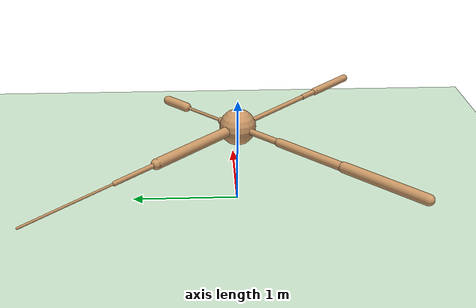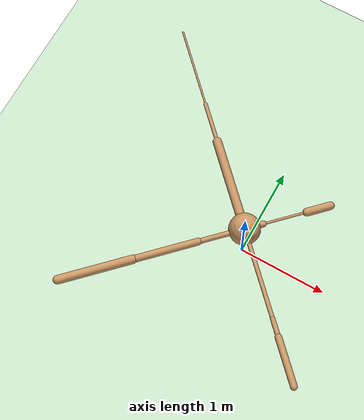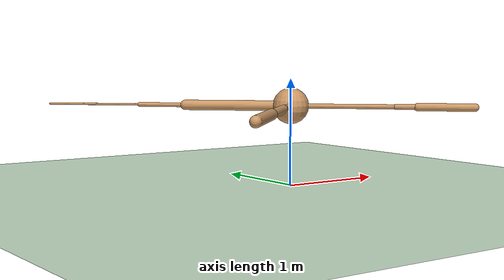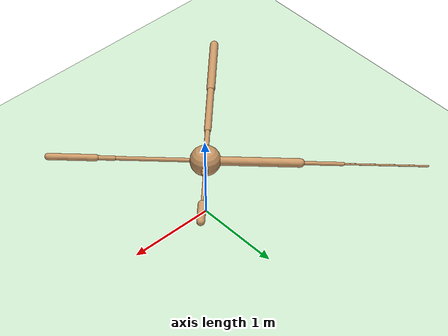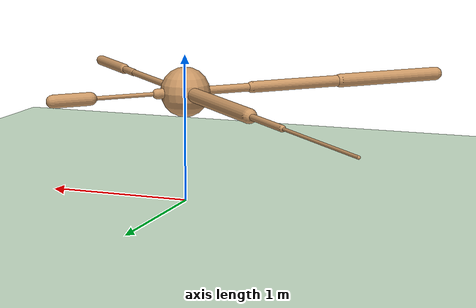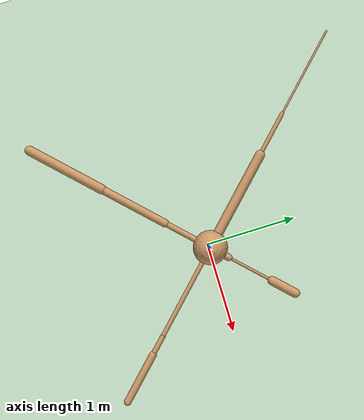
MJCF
<mujoco model="ant">
  <compiler angle="degree" coordinate="local" inertiafromgeom="true" />
  <option integrator="RK4" timestep="0.01" />
  <custom>
    <numeric data="0.0 0.0 0.55 1.0 0.0 0.0 0.0 0.0 1.0 0.0 -1.0 0.0 -1.0 0.0 1.0" name="init_qpos" />
  </custom>
  <default>
    <joint armature="1" damping="1" limited="true" />
    <geom conaffinity="0" condim="3" density="5.0" friction="1 0.5 0.5" margin="0.01" rgba="0.8 0.6 0.4 1" />
  </default>
  <asset>
    <texture builtin="gradient" height="100" rgb1="1 1 1" rgb2="0 0 0" type="skybox" width="100" />
    <texture builtin="flat" height="1278" mark="cross" markrgb="1 1 1" name="texgeom" random="0.01" rgb1="0.8 0.6 0.4" rgb2="0.8 0.6 0.4" type="cube" width="127" />
    <texture builtin="checker" height="100" name="texplane" rgb1="0 0 0" rgb2="0.8 0.8 0.8" type="2d" width="100" />
    <material name="MatPlane" reflectance="0.5" shininess="1" specular="1" texrepeat="60 60" texture="texplane" />
    <material name="geom" texture="texgeom" texuniform="true" />
  </asset>
  <worldbody>
    <light cutoff="100" diffuse="1 1 1" dir="-0 0 -1.3" directional="true" exponent="1" pos="0 0 1.3" specular=".1 .1 .1" />
    <geom conaffinity="1" condim="3" material="MatPlane" name="floor" pos="0 0 0" rgba="0.8 0.9 0.8 1" size="40 40 40" type="plane" />
    <body name="torso" pos="0 0 0.75">
      <camera name="track" mode="trackcom" pos="0 -11 5" xyaxes="1 0 0 0 0.5 1" />
      <geom name="torso_geom" pos="0 0 0" size="0.16927359998226166" type="sphere" />
      <joint armature="0" damping="0" limited="false" margin="0.01" name="root" pos="0 0 0" type="free" />
      <body name="front_left_leg" pos="0 0 0">
        <geom fromto="0 0 0 0.14239446818828583 0.14239446818828583 0" name="aux_1_geom" size="0.034903306514024734" type="capsule" />
        <body name="aux_1" pos="0.14239446818828583 0.14239446818828583 0">
          <joint axis="0 0 1" name="hip_1" pos="0.0 0.0 0.0" range="-30 30" type="hinge" />
          <geom fromto="0 0 0 0.3337318003177643 0.3337318003177643 0" name="left_leg_geom" size="0.013779496774077415" type="capsule" />
          <body name="left_leg_geom_aux" pos="0.3337318003177643 0.3337318003177643 0">
            <joint axis="-1 1 0" name="ankle_1" pos="0.0 0.0 0.0" range="30 70" type="hinge" />
            <geom fromto="0 0 0 0.18058335781097412 0.18058335781097412 0" name="left_ankle_geom" size="0.04423001408576965" type="capsule" />
          </body>
        </body>
      </body>
      <body name="front_right_leg" pos="0 0 0">
        <geom fromto="0 0 0 -0.7152926921844482 0.7152926921844482 0" name="aux_2_geom" size="0.04823509603738785" type="capsule" />
        <body name="aux_2" pos="-0.7152926921844482 0.7152926921844482 0">
          <joint axis="0 0 1" name="hip_2" pos="0.0 0.0 0.0" range="-30 30" type="hinge" />
          <geom fromto="0 0 0 -0.3200948238372803 0.3200948238372803 0" name="right_leg_geom" size="0.020801160484552383" type="capsule" />
          <body name="right_leg_geom_aux" pos="-0.3200948238372803 0.3200948238372803 0">
            <joint axis="1 1 0" name="ankle_2" pos="0.0 0.0 0.0" range="-70 -30" type="hinge" />
            <geom fromto="0 0 0 -0.6384626626968384 0.6384626626968384 0" name="right_ankle_geom" size="0.01019342616200447" type="capsule" />
          </body>
        </body>
      </body>
      <body name="back_leg" pos="0 0 0">
        <geom fromto="0 0 0 -0.3501206040382385 -0.3501206040382385 0" name="aux_3_geom" size="0.0285271517932415" type="capsule" />
        <body name="aux_3" pos="-0.3501206040382385 -0.3501206040382385 0">
          <joint axis="0 0 1" name="hip_3" pos="0.0 0.0 0.0" range="-30 30" type="hinge" />
          <geom fromto="0 0 0 -0.48933473229408264 -0.48933473229408264 0" name="back_leg_geom" size="0.03918435424566269" type="capsule" />
          <body name="back_leg_geom_aux" pos="-0.48933473229408264 -0.48933473229408264 0">
            <joint axis="-1 1 0" name="ankle_3" pos="0.0 0.0 0.0" range="-70 -30" type="hinge" />
            <geom fromto="0 0 0 -0.5581016540527344 -0.5581016540527344 0" name="third_ankle_geom" size="0.04737135395407677" type="capsule" />
          </body>
        </body>
      </body>
      <body name="right_back_leg" pos="0 0 0">
        <geom fromto="0 0 0 0.6866626143455505 -0.6866626143455505 0" name="aux_4_geom" size="0.022207533940672874" type="capsule" />
        <body name="aux_4" pos="0.6866626143455505 -0.6866626143455505 0">
          <joint axis="0 0 1" name="hip_4" pos="0.0 0.0 0.0" range="-30 30" type="hinge" />
          <geom fromto="0 0 0 0.14053350687026978 -0.14053350687026978 0" name="rightback_leg_geom" size="0.025893479585647583" type="capsule" />
          <body name="rightback_leg_geom_aux" pos="0.14053350687026978 -0.14053350687026978 0">
            <joint axis="1 1 0" name="ankle_4" pos="0.0 0.0 0.0" range="30 70" type="hinge" />
            <geom fromto="0 0 0 0.36247241497039795 -0.36247241497039795 0" name="fourth_ankle_geom" size="0.03653046861290932" type="capsule" />
          </body>
        </body>
      </body>
    </body>
  </worldbody>
  <actuator>
    <motor ctrllimited="true" ctrlrange="-1.0 1.0" joint="hip_4" gear="150" />
    <motor ctrllimited="true" ctrlrange="-1.0 1.0" joint="ankle_4" gear="150" />
    <motor ctrllimited="true" ctrlrange="-1.0 1.0" joint="hip_1" gear="150" />
    <motor ctrllimited="true" ctrlrange="-1.0 1.0" joint="ankle_1" gear="150" />
    <motor ctrllimited="true" ctrlrange="-1.0 1.0" joint="hip_2" gear="150" />
    <motor ctrllimited="true" ctrlrange="-1.0 1.0" joint="ankle_2" gear="150" />
    <motor ctrllimited="true" ctrlrange="-1.0 1.0" joint="hip_3" gear="150" />
    <motor ctrllimited="true" ctrlrange="-1.0 1.0" joint="ankle_3" gear="150" />
  </actuator>
</mujoco>
